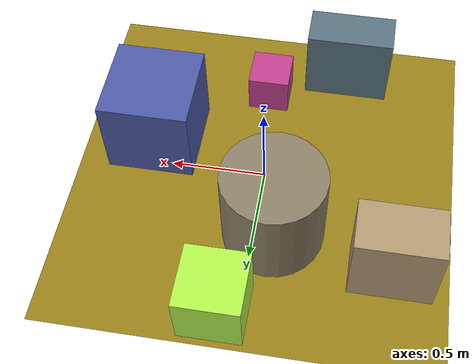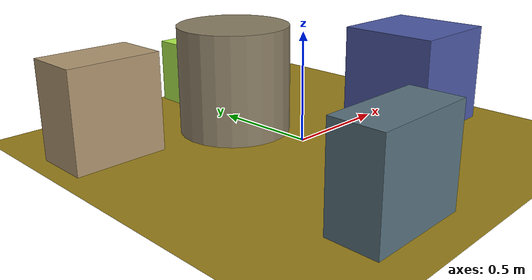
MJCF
<mujoco>
   <asset>
<texture type="skybox" builtin="gradient" rgb1="0.6 0.2 0.7" rgb2="0.3 0.6 0.1" width="256" height="256"/>
<texture name="checker_0" builtin="checker" type="2d" rgb1="0.5 0.2 0.7" rgb2="0.6 0.8 0.1" width="200" height="200"/>
<texture name="checker_1" builtin="checker" type="2d" rgb1="0.8 1.0 0.1" rgb2="0.6 0.9 0.5" width="200" height="200"/>
<texture name="checker_2" builtin="checker" type="2d" rgb1="0.8 0.5 0.7" rgb2="0.6 0.7 0.2" width="200" height="200"/>
<texture name="gradient_3" builtin="gradient" rgb1="0.4 0.0 0.5" rgb2="0.3 0.9 0.5" width="200" height="200"/>
<texture name="gradient_4" builtin="gradient" rgb1="0.7 0.0 0.5" rgb2="0.8 0.5 0.6" width="200" height="200"/>
<texture name="checker_5" builtin="checker" type="2d" rgb1="0.1 0.6 0.6" rgb2="0.5 0.1 0.7" width="200" height="200"/><material name="checker_0_mat" reflectance="0" texrepeat="5 5" texture="checker_0" texuniform="false" />
<material name="checker_1_mat" reflectance="0" texrepeat="6 6" texture="checker_1" texuniform="false" />
<material name="checker_2_mat" reflectance="0" texrepeat="2 2" texture="checker_2" texuniform="false" />
<material name="gradient_3_mat" reflectance="0" texture="gradient_3" texuniform="true"/>
<material name="gradient_4_mat" reflectance="0" texture="gradient_4" texuniform="true"/>
<material name="checker_5_mat" reflectance="0" texrepeat="4 4" texture="checker_5" texuniform="false" />
   </asset>

   <worldbody>
      <light diffuse=".9 .9 .9" pos="0 0 3" dir="0 0 -1"/>
     <geom type="plane" size="1 1 0.1" rgba="0.6 0.5 0.1 1"/>
<geom type="cylinder" pos="-0.1 0.34 0.25" size="0.26 0.25 0.25" material="checker_0_mat" />
<geom type="box" pos="0.11 0.81 0.16" size="0.16 0.16 0.16" material="checker_1_mat" />
<geom type="box" pos="-0.71 0.49 0.22" size="0.21 0.13 0.22" material="checker_2_mat" />
<geom type="box" pos="-0.37 -0.74 0.21" size="0.23 0.11 0.21" material="gradient_3_mat" />
<geom type="box" pos="0.05 -0.57 0.11" size="0.11 0.11 0.11" material="gradient_4_mat" />
<geom type="box" pos="0.61 -0.17 0.23" size="0.23 0.23 0.23" material="checker_5_mat" /><camera euler="60 0 180" fovy="60" name="camera_a" pos="0 -1.5 1"></camera>   </worldbody>
</mujoco>
